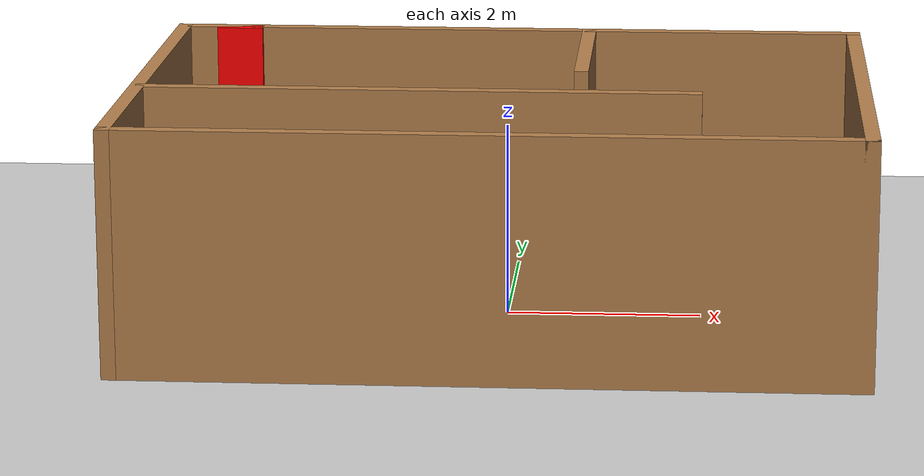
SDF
<sdf version="1.6">
 <world name="default">
  <light name="sun" type="directional">
   <pose>0 0 10 0 -0 0</pose>
   <diffuse>0.8 0.8 0.8 1</diffuse>
   <specular>0.1 0.1 0.1 1</specular>
   <attenuation>
    <range>1000</range>
    <constant>0.9</constant>
    <linear>0.01</linear>
    <quadratic>0.001</quadratic>
   </attenuation>
   <direction>-0.5 0.5 -1</direction>
  </light>
  <model name="ground_plane">
   <static>1</static>
   <link name="link">
    <collision name="collision">
     <geometry><plane><normal>0 0 1</normal><size>100 100</size></plane></geometry>
     <surface><friction><ode><mu>100</mu><mu2>50</mu2></ode></friction></surface>
    </collision>
    <visual name="visual">
     <cast_shadows>0</cast_shadows>
     <geometry><plane><normal>0 0 1</normal><size>100 100</size></plane></geometry>
     <material>
      <script><uri>file://media/materials/scripts/gazebo.material</uri><name>Gazebo/Grey</name></script>
     </material>
    </visual>
   </link>
  </model>
  <gravity>0 0 -9.8</gravity>
  <magnetic_field>6e-06 2.3e-05 -4.2e-05</magnetic_field>
  <atmosphere type="adiabatic"/>
  <physics name="default_physics" default="0" type="ode">
   <max_step_size>0.001</max_step_size>
   <real_time_factor>1</real_time_factor>
   <real_time_update_rate>1000</real_time_update_rate>
  </physics>
  <scene><ambient>0.4 0.4 0.4 1</ambient><background>0.7 0.7 0.7 1</background><shadows>1</shadows></scene>
  <spherical_coordinates>
   <surface_model>EARTH_WGS84</surface_model>
   <latitude_deg>0</latitude_deg>
   <longitude_deg>0</longitude_deg>
   <elevation>0</elevation>
   <heading_deg>0</heading_deg>
  </spherical_coordinates>
  <model name="vaccums_room">
   <pose>-0.059575 0.00297 0 0 -0 0</pose>
   <link name="Wall_10">
    <collision name="Wall_10_Collision">
     <geometry><box><size>7.5 0.15 2.5</size></box></geometry>
     <pose>0 0 1.25 0 -0 0</pose>
    </collision>
    <visual name="Wall_10_Visual">
     <pose>0 0 1.25 0 -0 0</pose>
     <geometry><box><size>7.5 0.15 2.5</size></box></geometry>
     <material>
      <script><uri>file://media/materials/scripts/gazebo.material</uri><name>Gazebo/Wood</name></script>
      <ambient>1 1 1 1</ambient>
     </material>
    </visual>
    <pose>0 -2.55 0 0 -0 0</pose>
   </link>
   <link name="Wall_11">
    <collision name="Wall_11_Collision">
     <geometry><box><size>5.25 0.15 2.5</size></box></geometry>
     <pose>0 0 1.25 0 -0 0</pose>
    </collision>
    <visual name="Wall_11_Visual">
     <pose>0 0 1.25 0 -0 0</pose>
     <geometry><box><size>5.25 0.15 2.5</size></box></geometry>
     <material>
      <script><uri>file://media/materials/scripts/gazebo.material</uri><name>Gazebo/Wood</name></script>
      <ambient>1 1 1 1</ambient>
     </material>
    </visual>
    <pose>3.675 0 0 0 -0 1.5708</pose>
   </link>
   <link name="Wall_12">
    <collision name="Wall_12_Collision">
     <geometry><box><size>7.5 0.15 2.5</size></box></geometry>
     <pose>0 0 1.25 0 -0 0</pose>
    </collision>
    <visual name="Wall_12_Visual">
     <pose>0 0 1.25 0 -0 0</pose>
     <geometry><box><size>7.5 0.15 2.5</size></box></geometry>
     <material>
      <script><uri>file://media/materials/scripts/gazebo.material</uri><name>Gazebo/Wood</name></script>
      <ambient>1 1 1 1</ambient>
     </material>
    </visual>
    <pose>0 2.55 0 0 -0 3.14159</pose>
   </link>
   <link name="Wall_14">
    <collision name="Wall_14_Collision">
     <geometry><box><size>2.25 0.15 2.5</size></box></geometry>
     <pose>0 0 1.25 0 -0 0</pose>
    </collision>
    <visual name="Wall_14_Visual">
     <pose>0 0 1.25 0 -0 0</pose>
     <geometry><box><size>2.25 0.15 2.5</size></box></geometry>
     <material>
      <script><uri>file://media/materials/scripts/gazebo.material</uri><name>Gazebo/Wood</name></script>
      <ambient>1 1 1 1</ambient>
     </material>
    </visual>
    <pose>0.79505 1.48677 0 0 0 -1.5708</pose>
   </link>
   <link name="Wall_16">
    <collision name="Wall_16_Collision">
     <geometry><box><size>5.75 0.15 2.5</size></box></geometry>
     <pose>0 0 1.25 0 -0 0</pose>
    </collision>
    <visual name="Wall_16_Visual">
     <pose>0 0 1.25 0 -0 0</pose>
     <geometry><box><size>5.75 0.15 2.5</size></box></geometry>
     <material>
      <script><uri>file://media/materials/scripts/gazebo.material</uri><name>Gazebo/Wood</name></script>
      <ambient>1 1 1 1</ambient>
     </material>
    </visual>
    <pose>-0.8221 -0.59755 0 0 -0 0</pose>
   </link>
   <link name="Wall_9">
    <collision name="Wall_9_Collision">
     <geometry><box><size>5.25 0.15 2.5</size></box></geometry>
     <pose>0 0 1.25 0 -0 0</pose>
    </collision>
    <visual name="Wall_9_Visual">
     <pose>0 0 1.25 0 -0 0</pose>
     <geometry><box><size>5.25 0.15 2.5</size></box></geometry>
     <material>
      <script><uri>file://media/materials/scripts/gazebo.material</uri><name>Gazebo/Wood</name></script>
      <ambient>1 1 1 1</ambient>
     </material>
    </visual>
    <pose>-3.675 0 0 0 0 -1.5708</pose>
   </link>
   <static>1</static>
  </model>
  <model name="red_wall">
   <pose>-3.10743 2.4929 0 0 -0 0</pose>
   <link name="Wall_7">
    <collision name="Wall_7_Collision">
     <geometry><box><size>0.5 0.15 2.5</size></box></geometry>
     <pose>0 0 1.25 0 -0 0</pose>
    </collision>
    <visual name="Wall_7_Visual">
     <pose>0 0 1.25 0 -0 0</pose>
     <geometry><box><size>0.5 0.15 2.5</size></box></geometry>
     <material>
      <script><uri>file://media/materials/scripts/gazebo.material</uri><name>Gazebo/Grey</name></script>
      <ambient>1 0 0 1</ambient>
     </material>
    </visual>
   </link>
   <static>1</static>
  </model>
  <model name="unit_box_0">
   <pose>-1.73461 0.98427 0.499995 0 1e-05 -6.8e-05</pose>
   <link name="link">
    <inertial>
     <mass>1</mass>
     <inertia>
      <ixx>0.166667</ixx>
      <ixy>0</ixy>
      <ixz>0</ixz>
      <iyy>0.166667</iyy>
      <iyz>0</iyz>
      <izz>0.166667</izz>
     </inertia>
    </inertial>
    <collision name="collision"><geometry><box><size>1 1 1</size></box></geometry></collision>
    <visual name="visual">
     <geometry><box><size>1 1 1</size></box></geometry>
     <material>
      <script><name>Gazebo/Grey</name><uri>file://media/materials/scripts/gazebo.material</uri></script>
     </material>
    </visual>
   </link>
  </model>
 </world>
</sdf>
